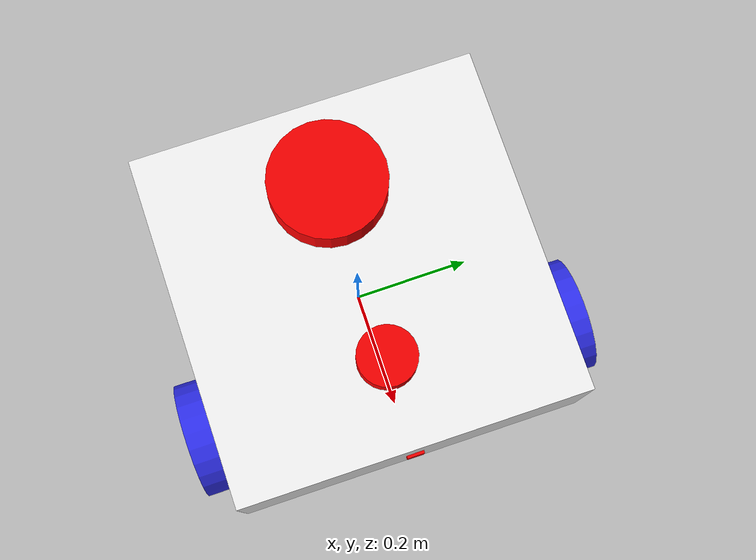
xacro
<?xml version="1.0"?>
<robot xmlns:xacro="http://www.ros.org/wiki/xacro"  name="robot">

    <xacro:include filename="robot_core.xacro"/>
    <xacro:include filename="ros2_control.xacro"/>
    <xacro:include filename="lidar.xacro"/>
    <xacro:include filename="gps.xacro"/>
    <xacro:include filename="depth_camera.xacro"/>
    <xacro:include filename="imu.xacro"/>

</robot>

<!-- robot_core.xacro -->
<robot xmlns:xacro="http://www.ros.org/wiki/xacro"  name="robot">

    <xacro:include filename="inertial_macros.xacro"/>

    <material name="white">
        <color rgba="1 1 1 1" />
    </material>

    <material name="orange">
        <color rgba="1 0.3 0.1 1" />
    </material>

    <material name="blue">
        <color rgba="0.2 0.2 1 1" />
    </material>

    <material name="black">
        <color rgba="0 0 0 1" />
    </material>

    <material name="red">
        <color rgba="1 0 0 1" />
    </material>

    <!--Base link-->

    <link name="base_link">

    </link>

    <!--Chassis Link  -->

    <joint name="chassis_joint" type="fixed">
        <parent link="base_link"/>
        <child link="chassis_link"/>
        <origin xyz="-0.3 0 0"/>
    </joint>

    <link name="chassis_link">
        <visual>
            <origin xyz="0.3 0 0.1"/>
            <geometry>
                <box size="0.6 0.6 0.2"/>
            </geometry>
            <material name="white"/>
        </visual>

        <collision>
            <origin xyz="0.3 0 0.1"/>
            <geometry>
                <box size="0.6 0.6 0.2"/>
            </geometry>
        </collision>
        <xacro:inertial_box mass="5" x="0.6" y="0.6" z="0.2">
            <origin xyz="0.3 0 0.1" rpy="0 0 0"/>
        </xacro:inertial_box>
    </link>

    <gazebo reference="chassis_link">
        <material>Gazebo/White</material>
    </gazebo>

    <!--FRONT LEFT WHEEL LINK -->

    <joint name="left_wheel_joint" type="continuous">
        <parent link="base_link"/>
        <child link="left_wheel"/>
        <origin xyz="0.15 0.3275 0" rpy="${pi/2} 0 0"/>
        <axis xyz="0 0 -1"/>
    </joint>

    <link name="left_wheel">
        <visual>
            <geometry>
                <cylinder radius="0.10" length="0.055"/>
            </geometry>
            <material name="blue"/>
        </visual>

        <collision>
            <geometry>
                <cylinder radius="0.10" length="0.055"/>
            </geometry>
        </collision>
        <xacro:inertial_cylinder mass="3" radius="0.10" length="0.055">
            <origin xyz="0 0 0" rpy="0 0 0"/>
        </xacro:inertial_cylinder>
    </link>

    <gazebo reference="left_wheel">
        <material>Gazebo/Blue</material>
    </gazebo>

    <!--FRONT RIGHT WHEEL LINK -->

    <joint name="right_wheel_joint" type="continuous">
        <parent link="base_link"/>
        <child link="right_wheel"/>
        <origin xyz="0.15 -0.3275 0" rpy="-${pi/2} 0 0"/>
        <axis xyz="0 0 1"/>
    </joint>

    <link name="right_wheel">
        <visual>
            <geometry>
                <cylinder radius="0.10" length="0.055"/>
            </geometry>
            <material name="blue"/>
        </visual>
        <collision>
            <geometry>
                <cylinder radius="0.10" length="0.055"/>
            </geometry>
        </collision>
        <xacro:inertial_cylinder mass="3" radius="0.10" length="0.055">
            <origin xyz="0 0 0" rpy="0 0 0"/>
        </xacro:inertial_cylinder>
    </link>

    <gazebo reference="right_wheel">
        <material>Gazebo/Blue</material>
    </gazebo>

    <!--LEFT CASTER WHEEL LINK -->

    <joint name="left_caster_wheel_joint" type="fixed">
        <parent link="chassis_link"/>
        <child link="left_caster_wheel"/>
        <origin xyz="0.1 -0.20 0"/>
    </joint>

    <link name="left_caster_wheel">
        <visual>
            <geometry>
                <sphere radius="0.1"/>
            </geometry>
            <material name="black"/>
        </visual>
        <collision>
            <geometry>
                <sphere radius="0.1"/>
            </geometry>
        </collision>
        <xacro:inertial_sphere mass="2" radius="0.1">
            <origin xyz="0 0 0" rpy="0 0 0"/>
        </xacro:inertial_sphere>
    </link>

    <gazebo reference="left_caster_wheel">
        <material>Gazebo/Black</material>
        <mu1 value="0.000001"/>
        <mu2 value="0.000001"/>
    </gazebo>

    <!--RIGHT CASTER WHEEL LINK -->

    <joint name="right_caster_wheel_joint" type="fixed">
        <parent link="chassis_link"/>
        <child link="right_caster_wheel"/>
        <origin xyz="0.1 0.20 0"/>
    </joint>

    <link name="right_caster_wheel">
        <visual>
            <geometry>
                <sphere radius="0.1"/>
            </geometry>
            <material name="black"/>
        </visual>
        <collision>
            <geometry>
                <sphere radius="0.1"/>
            </geometry>
        </collision>
        <xacro:inertial_sphere mass="2" radius="0.1">
            <origin xyz="0 0 0" rpy="0 0 0"/>
        </xacro:inertial_sphere>
    </link>

    <gazebo reference="right_caster_wheel">
        <material>Gazebo/Black</material>
        <mu1 value="0.000001"/>
        <mu2 value="0.000001"/>
    </gazebo>

</robot>

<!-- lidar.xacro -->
<robot xmlns:xacro="http://www.ros.org/wiki/xacro">

    <joint name="laser_joint" type="fixed">
        <parent link="chassis_link"/>
        <child link="laser_frame"/>
        <origin xyz="0.45 0 0.23" rpy="0 0 0"/>
    </joint>

    <link name="laser_frame">
        <visual>
            <geometry>
                <cylinder radius="0.05" length="0.04"/>
            </geometry>
            <material name="red"/>
        </visual>
        <collision>
            <geometry>
                <cylinder radius="0.05" length="0.04"/>
            </geometry>
        </collision>
        <xacro:inertial_cylinder mass="0.1" radius="0.05" length="0.08">
            <origin xyz="0 0 0" rpy="0 0 0"/>
        </xacro:inertial_cylinder>
    </link>

    <gazebo reference="laser_frame">
        <material>Gazebo/Red</material>
        <sensor name="laser" type="ray">
            <pose> 0 0 0 0 0 0 </pose>
            <visualize>false</visualize>
            <update_rate>10</update_rate>
            <ray>
                <scan>
                    <horizontal>
                        <sample>360</sample>
                        <min_angle>-3.14</min_angle>
                        <max_angle>3.14</max_angle>
                    </horizontal>
                </scan>
                <range>
                    <min>0.3</min>
                    <max>12</max>
                </range>
            </ray>
            <plugin name="laser_controller" filename="libgazebo_ros_ray_sensor.so">
                <ros>
                    <argument>~/out:=scan</argument>
                </ros>
                <output_type>sensor_msgs/LaserScan</output_type>
                <frame_name>laser_frame</frame_name>
            </plugin>
        </sensor>
    </gazebo>

</robot>

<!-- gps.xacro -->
<robot xmlns:xacro="http://www.ros.org/wiki/xacro">

    <joint name="gps_joint" type="fixed">
        <parent link="base_link"/>
        <child link="gps_link"/>
        <origin xyz="-0.15 0 0.20" rpy="0 0 0"/>
    </joint>

    <link name="gps_link">
        <visual>
            <geometry>
                <cylinder radius="0.10" length="0.12"/>
            </geometry>
            <material name="red"/>
        </visual>
        <collision>
            <geometry>
                <cylinder radius="0.10" length="0.12"/>
            </geometry>
        </collision>
        <xacro:inertial_cylinder mass="0.3" radius="0.10" length="0.12">
            <origin xyz="-0.15 0 0.20" rpy="0 0 0"/>
        </xacro:inertial_cylinder>
    </link>

    <gazebo reference="gps_link">
        <sensor name="gps_sensor" type="gps">
            <always_on>true</always_on>
            <update_rate>1.0</update_rate>
            <plugin name="gps_controller" filename="libgazebo_ros_gps_sensor.so">
                <ros>
                <remapping>gps_controller/out:=gps</remapping>
                </ros>
                <frame_name>gps_link</frame_name>
                <offset>0 0 0</offset>
                <drift>0.001 0.001 0.001</drift>
                <gaussianNoise>0.05 0.05 0.05</gaussianNoise>
                <velocityDrift>0.001 0.001 0.001</velocityDrift>
                <velocityGaussianNoise>0.5 0.5 0.5</velocityGaussianNoise>
            </plugin>
        </sensor>
        <material>Gazebo/Turquoise</material>
  </gazebo>

</robot>

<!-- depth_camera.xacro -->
<robot xmlns:xacro="http://www.ros.org/wiki/xacro">

<!-- FRONT CAMERA -->

    <joint name="camera_front_joint" type="fixed">
        <parent link="chassis_link"/>
        <child link="camera_front_link"/>
        <origin xyz="0.6 0 0.1" rpy="0 0 0"/>
    </joint>

    <link name="camera_front_link">
        <visual>
            <geometry>
                <box size="0.010 0.03 0.03"/>
            </geometry>
            <material name="red"/>
        </visual>
    </link>

    <joint name="camera_opticalf_joint" type="fixed">
        <parent link="camera_front_link"/>
        <child link="camera_link_opticalf"/>
        <origin xyz="0 0 0" rpy="${-pi/2} 0 ${-pi/2}"/>
    </joint>

    <link name="camera_link_opticalf"></link>

    <gazebo reference="camera_front_link">
        <material>Gazebo/Red</material>
        <sensor name="camera" type="depth">
            <pose> 0 0 0 0 0 0 </pose>
            <visualize>true</visualize>
            <update_rate>10</update_rate>
            <camera>
                <horizontal_fov>1.089</horizontal_fov>
                <image>
                    <format>B8G8R8</format>
                    <width>640</width>
                    <height>480</height>
                </image>
                <clip>
                    <near>0.05</near>
                    <far>8.0</far>
                </clip>
            </camera>
            <plugin name="camera_controller_front" filename="libgazebo_ros_camera.so">
                <frame_name>camera_link_opticalf</frame_name>
                <min_depth>0.1</min_depth>
                <max_depth>100.0</max_depth>
            </plugin>
        </sensor>
    </gazebo>

</robot>

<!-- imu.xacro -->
<robot xmlns:xacro="http://www.ros.org/wiki/xacro">

    <joint name="imu_joint" type="fixed">
        <parent link="base_link"/>
        <child link="imu_link"/>
        <origin xyz="0 0 0.10" rpy="0 0 0"/>
    </joint>

    <link name="imu_link">
        <visual>
            <geometry>
                <box size="0.03 0.05 0.03"/>
            </geometry>
            <material name="red"/>
        </visual>
        <collision>
            <geometry>
                <box size="0.02 0.02 0.03"/>
            </geometry>
        </collision>
        <xacro:inertial_box mass="0.02" x="0.02" y="0.02" z="0.03">
                <origin xyz="0 0 0.10" rpy="0 0 0"/>
        </xacro:inertial_box>
    </link>

    <gazebo reference="imu_link">
        <gravity>true</gravity>
        <sensor name="imu_sensor" type="imu">
            <always_on>true</always_on>
            <update_rate>100</update_rate>
            <visualize>true</visualize>
            <topic>__default_topic__</topic>
            <plugin filename="libgazebo_ros_imu_sensor.so" name="imu_plugin">
                <topicName>imu</topicName>
                <bodyName>imu_link</bodyName>
                <updateRateHZ>10.0</updateRateHZ>
                <gaussianNoise>0.0</gaussianNoise>
                <xyzOffset>0 0 0</xyzOffset>
                <rpyOffset>0 0 0</rpyOffset>
                <frameName>imu_link</frameName>
                <initialOrientationAsReference>false</initialOrientationAsReference>
            </plugin>
            <pose>0 0 0 0 0 0</pose>
        </sensor>
  </gazebo>

</robot>
